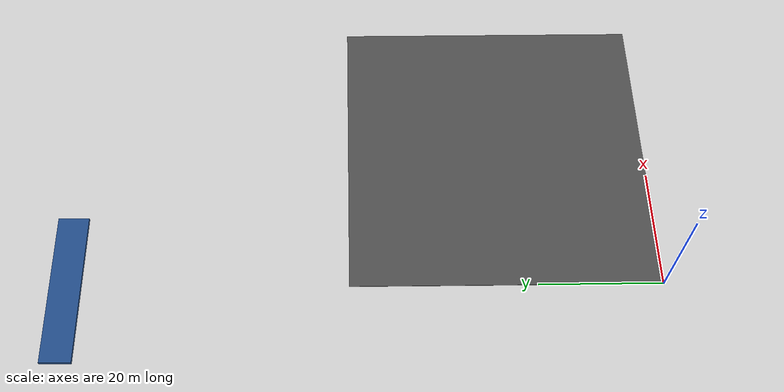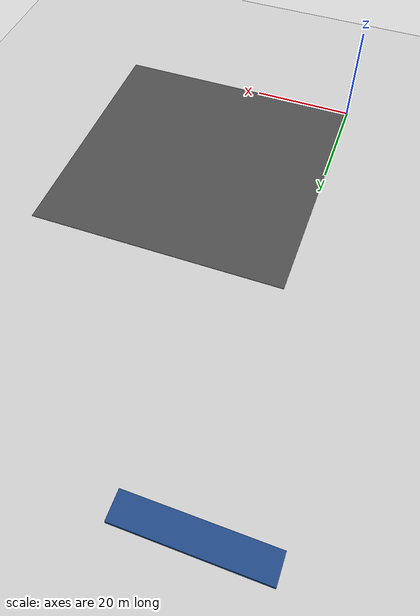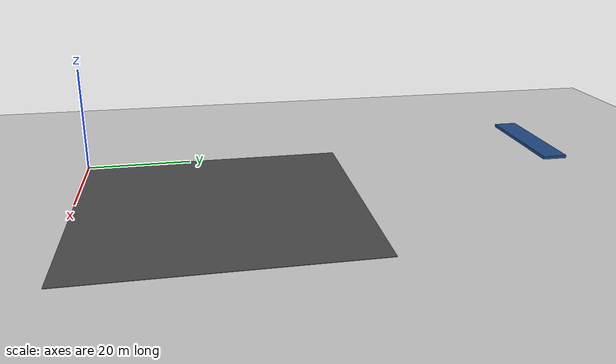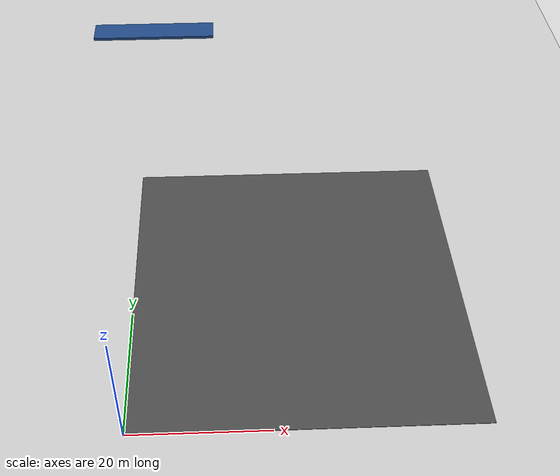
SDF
<sdf version="1.7">
 <world name="default">
  <model name="ground_plane">
   <static>1</static>
   <link name="link">
    <collision name="collision">
     <geometry><plane><normal>0 0 1</normal><size>100 100</size></plane></geometry>
     <surface>
      <contact><collide_bitmask>65535</collide_bitmask></contact>
      <friction><ode><mu>100</mu><mu2>50</mu2></ode></friction>
     </surface>
    </collision>
    <visual name="visual">
     <cast_shadows>0</cast_shadows>
     <geometry><plane><normal>0 0 1</normal><size>100 100</size></plane></geometry>
     <material>
      <script><uri>file://media/materials/scripts/gazebo.material</uri><name>Gazebo/Grey</name></script>
     </material>
    </visual>
   </link>
  </model>
  <model name="asphalt_plane">
   <link name="link">
    <inertial>
     <mass>1</mass>
     <inertia><ixx>1</ixx><ixy>0</ixy><ixz>0</ixz><iyy>1</iyy><iyz>0</iyz><izz>1</izz></inertia>
    </inertial>
    <visual name="visual">
     <cast_shadows>0</cast_shadows>
     <geometry><box><size>50 50 0.1</size></box></geometry>
     <material>
      <script>
       <uri>model://asphalt_plane/materials/scripts</uri>
       <uri>model://asphalt_plane/materials/textures</uri>
       <name>vrc/asphalt</name>
      </script>
      <shader type="pixel"><normal_map>__default__</normal_map></shader>
      <ambient>0.5 0.5 0.5 1</ambient>
      <diffuse>0.5 0.5 0.5 1</diffuse>
      <specular>0.2 0.2 0.2 1</specular>
      <emissive>0 0 0 1</emissive>
     </material>
    </visual>
    <collision name="collision">
     <geometry><box><size>50 50 0.1</size></box></geometry>
     <surface>
      <friction>
       <ode><mu>1</mu><mu2>1</mu2><fdir1>0 0 0</fdir1><slip1>0</slip1><slip2>0</slip2></ode>
       <torsional>
        <coefficient>1</coefficient>
        <patch_radius>0</patch_radius>
        <surface_radius>0</surface_radius>
        <use_patch_radius>1</use_patch_radius>
        <ode><slip>0</slip></ode>
       </torsional>
      </friction>
      <bounce><restitution_coefficient>0</restitution_coefficient><threshold>1e+06</threshold></bounce>
      <contact>
       <collide_without_contact>0</collide_without_contact>
       <collide_without_contact_bitmask>1</collide_without_contact_bitmask>
       <collide_bitmask>1</collide_bitmask>
       <ode>
        <soft_cfm>0</soft_cfm>
        <soft_erp>0.2</soft_erp>
        <kp>1e+13</kp>
        <kd>1</kd>
        <max_vel>0.01</max_vel>
        <min_depth>0</min_depth>
       </ode>
       <bullet>
        <split_impulse>1</split_impulse>
        <split_impulse_penetration_threshold>-0.01</split_impulse_penetration_threshold>
        <soft_cfm>0</soft_cfm>
        <soft_erp>0.2</soft_erp>
        <kp>1e+13</kp>
        <kd>1</kd>
       </bullet>
      </contact>
     </surface>
    </collision>
   </link>
   <static>1</static>
   <pose>25 25 0 0 -0 0</pose>
  </model>
  <model name="blue_box_25x5_clone_clone_0">
   <link name="link">
    <inertial>
     <mass>1</mass>
     <inertia>
      <ixx>0.166667</ixx>
      <ixy>0</ixy>
      <ixz>0</ixz>
      <iyy>0.166667</iyy>
      <iyz>0</iyz>
      <izz>0.166667</izz>
     </inertia>
    </inertial>
    <visual name="visual">
     <geometry><box><size>25 5 1</size></box></geometry>
     <material>
      <script><name>Gazebo/Grey</name><uri>file://media/materials/scripts/gazebo.material</uri></script>
      <shader type="pixel"><normal_map>__default__</normal_map></shader>
      <ambient>0.125 0.29 0.529 1</ambient>
      <diffuse>0.7 0.7 0.7 1</diffuse>
      <specular>0.01 0.01 0.01 1</specular>
      <emissive>0 0 0 1</emissive>
     </material>
    </visual>
    <collision name="collision">
     <geometry><box><size>25 5 1</size></box></geometry>
     <surface>
      <friction>
       <ode><mu>1</mu><mu2>1</mu2><fdir1>0 0 0</fdir1><slip1>0</slip1><slip2>0</slip2></ode>
       <torsional>
        <coefficient>1</coefficient>
        <patch_radius>0</patch_radius>
        <surface_radius>0</surface_radius>
        <use_patch_radius>1</use_patch_radius>
        <ode><slip>0</slip></ode>
       </torsional>
      </friction>
      <bounce><restitution_coefficient>0</restitution_coefficient><threshold>1e+06</threshold></bounce>
      <contact>
       <collide_without_contact>0</collide_without_contact>
       <collide_without_contact_bitmask>1</collide_without_contact_bitmask>
       <collide_bitmask>1</collide_bitmask>
       <ode>
        <soft_cfm>0</soft_cfm>
        <soft_erp>0.2</soft_erp>
        <kp>1e+13</kp>
        <kd>1</kd>
        <max_vel>0.01</max_vel>
        <min_depth>0</min_depth>
       </ode>
       <bullet>
        <split_impulse>1</split_impulse>
        <split_impulse_penetration_threshold>-0.01</split_impulse_penetration_threshold>
        <soft_cfm>0</soft_cfm>
        <soft_erp>0.2</soft_erp>
        <kp>1e+13</kp>
        <kd>1</kd>
       </bullet>
      </contact>
     </surface>
    </collision>
   </link>
   <static>1</static>
   <pose>0 95 0 0 -0 0</pose>
  </model>
 </world>
</sdf>
